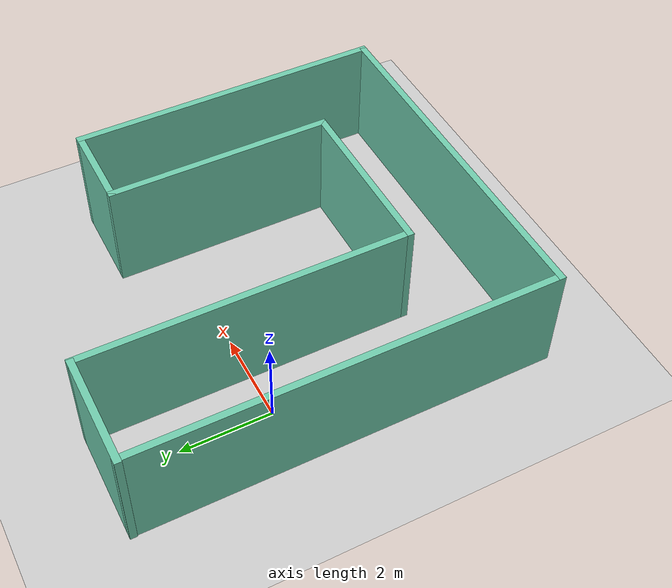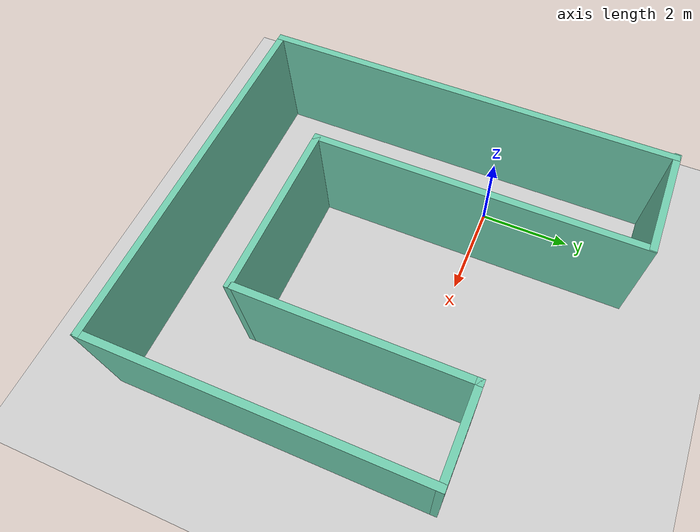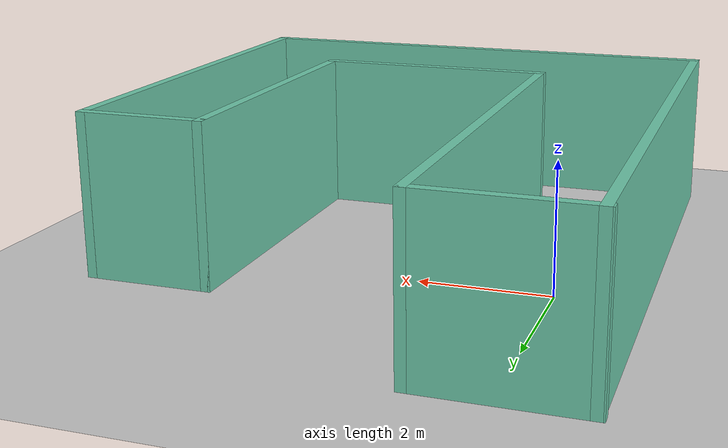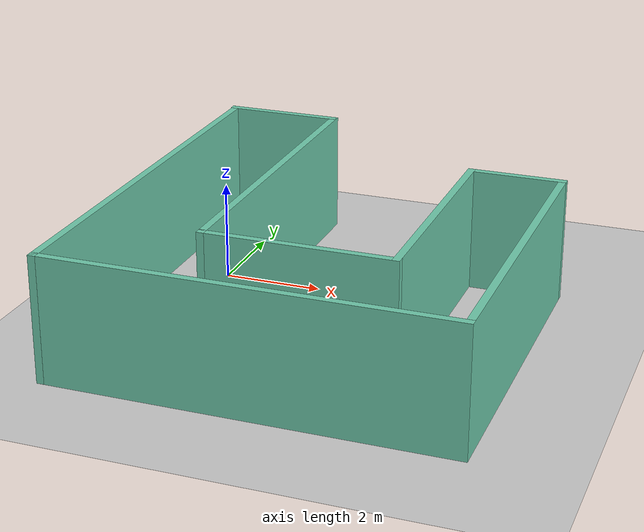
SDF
<sdf version="1.6">
 <world name="default">
  <light name="sun" type="directional">
   <pose>0 0 10 0 -0 0</pose>
   <diffuse>0.8 0.8 0.8 1</diffuse>
   <specular>0.2 0.2 0.2 1</specular>
   <attenuation>
    <range>1000</range>
    <constant>0.9</constant>
    <linear>0.01</linear>
    <quadratic>0.001</quadratic>
   </attenuation>
   <direction>-0.5 0.1 -0.9</direction>
  </light>
  <model name="ground_plane">
   <static>1</static>
   <link name="link">
    <collision name="collision">
     <geometry><plane><normal>0 0 1</normal><size>100 100</size></plane></geometry>
     <surface><friction><ode><mu>100</mu><mu2>50</mu2></ode></friction></surface>
    </collision>
    <visual name="visual">
     <cast_shadows>0</cast_shadows>
     <geometry><plane><normal>0 0 1</normal><size>100 100</size></plane></geometry>
     <material>
      <script><uri>file://media/materials/scripts/gazebo.material</uri><name>Gazebo/Grey</name></script>
     </material>
    </visual>
   </link>
  </model>
  <gravity>0 0 -9.8</gravity>
  <magnetic_field>6e-06 2.3e-05 -4.2e-05</magnetic_field>
  <atmosphere type="adiabatic"/>
  <physics name="default_physics" default="0" type="ode">
   <max_step_size>0.001</max_step_size>
   <real_time_factor>1</real_time_factor>
   <real_time_update_rate>1000</real_time_update_rate>
  </physics>
  <scene><ambient>0.4 0.4 0.4 1</ambient><background>0.7 0.7 0.7 1</background><shadows>1</shadows></scene>
  <spherical_coordinates>
   <surface_model>EARTH_WGS84</surface_model>
   <latitude_deg>0</latitude_deg>
   <longitude_deg>0</longitude_deg>
   <elevation>0</elevation>
   <heading_deg>0</heading_deg>
  </spherical_coordinates>
  <model name="Untitled">
   <pose>2.67663 -1.065 0 0 -0 0</pose>
   <link name="Wall_0">
    <collision name="Wall_0_Collision">
     <geometry><box><size>2.45374 0.15 2.5</size></box></geometry>
     <pose>0 0 1.25 0 -0 0</pose>
    </collision>
    <visual name="Wall_0_Visual">
     <pose>0 0 1.25 0 -0 0</pose>
     <geometry><box><size>2.45374 0.15 2.5</size></box></geometry>
     <material>
      <script><uri>file://media/materials/scripts/gazebo.material</uri><name>Gazebo/Grey</name></script>
      <ambient>0.435294 0.796078 0.67451 1</ambient>
     </material>
     <meta><layer>0</layer></meta>
    </visual>
    <pose>-2.7847 4.51213 0 0 -0 0</pose>
   </link>
   <link name="Wall_3">
    <collision name="Wall_3_Collision">
     <geometry><box><size>9.1744 0.15 2.5</size></box></geometry>
     <pose>0 0 1.25 0 -0 0</pose>
    </collision>
    <visual name="Wall_3_Visual">
     <pose>0 0 1.25 0 -0 0</pose>
     <geometry><box><size>9.1744 0.15 2.5</size></box></geometry>
     <material>
      <script><uri>file://media/materials/scripts/gazebo.material</uri><name>Gazebo/Grey</name></script>
      <ambient>0.435294 0.796078 0.67451 1</ambient>
     </material>
     <meta><layer>0</layer></meta>
    </visual>
    <pose>-3.91344 -9e-06 0 0 0 -1.5708</pose>
   </link>
   <link name="Wall_4">
    <collision name="Wall_4_Collision">
     <geometry><box><size>8 0.15 2.5</size></box></geometry>
     <pose>0 0 1.25 0 -0 0</pose>
    </collision>
    <visual name="Wall_4_Visual">
     <pose>0 0 1.25 0 -0 0</pose>
     <geometry><box><size>8 0.15 2.5</size></box></geometry>
     <material>
      <script><uri>file://media/materials/scripts/gazebo.material</uri><name>Gazebo/Grey</name></script>
      <ambient>0.435294 0.796078 0.67451 1</ambient>
     </material>
     <meta><layer>0</layer></meta>
    </visual>
    <pose>0.011565 -4.51215 0 0 -0 0</pose>
   </link>
   <link name="Wall_5">
    <collision name="Wall_5_Collision">
     <geometry><box><size>7 0.15 2.5</size></box></geometry>
     <pose>0 0 1.25 0 -0 0</pose>
    </collision>
    <visual name="Wall_5_Visual">
     <pose>0 0 1.25 0 -0 0</pose>
     <geometry><box><size>7 0.15 2.5</size></box></geometry>
     <material>
      <script><uri>file://media/materials/scripts/gazebo.material</uri><name>Gazebo/Grey</name></script>
      <ambient>0.435294 0.796078 0.67451 1</ambient>
     </material>
     <meta><layer>0</layer></meta>
    </visual>
    <pose>3.93656 -1.08715 0 0 -0 1.5708</pose>
   </link>
   <link name="Wall_6">
    <collision name="Wall_6_Collision">
     <geometry><box><size>2 0.15 2.5</size></box></geometry>
     <pose>0 0 1.25 0 -0 0</pose>
    </collision>
    <visual name="Wall_6_Visual">
     <pose>0 0 1.25 0 -0 0</pose>
     <geometry><box><size>2 0.15 2.5</size></box></geometry>
     <material>
      <script><uri>file://media/materials/scripts/gazebo.material</uri><name>Gazebo/Grey</name></script>
      <ambient>0.435294 0.796078 0.67451 1</ambient>
     </material>
     <meta><layer>0</layer></meta>
    </visual>
    <pose>3.01157 2.33785 0 0 -0 3.14159</pose>
   </link>
   <link name="Wall_7">
    <collision name="Wall_7_Collision">
     <geometry><box><size>5 0.15 2.5</size></box></geometry>
     <pose>0 0 1.25 0 -0 0</pose>
    </collision>
    <visual name="Wall_7_Visual">
     <pose>0 0 1.25 0 -0 0</pose>
     <geometry><box><size>5 0.15 2.5</size></box></geometry>
     <material>
      <script><uri>file://media/materials/scripts/gazebo.material</uri><name>Gazebo/Grey</name></script>
      <ambient>0.435294 0.796078 0.67451 1</ambient>
     </material>
     <meta><layer>0</layer></meta>
    </visual>
    <pose>2.08656 -0.087147 0 0 0 -1.5708</pose>
   </link>
   <link name="Wall_8">
    <collision name="Wall_8_Collision">
     <geometry><box><size>3.84626 0.15 2.5</size></box></geometry>
     <pose>0 0 1.25 0 -0 0</pose>
    </collision>
    <visual name="Wall_8_Visual">
     <pose>0 0 1.25 0 -0 0</pose>
     <geometry><box><size>3.84626 0.15 2.5</size></box></geometry>
     <material>
      <script><uri>file://media/materials/scripts/gazebo.material</uri><name>Gazebo/Grey</name></script>
      <ambient>0.435294 0.796078 0.67451 1</ambient>
     </material>
     <meta><layer>0</layer></meta>
    </visual>
    <pose>0.238435 -2.51215 0 0 -0 3.14159</pose>
   </link>
   <link name="Wall_9">
    <collision name="Wall_9_Collision">
     <geometry><box><size>7.17443 0.15 2.5</size></box></geometry>
     <pose>0 0 1.25 0 -0 0</pose>
    </collision>
    <visual name="Wall_9_Visual">
     <pose>0 0 1.25 0 -0 0</pose>
     <geometry><box><size>7.17443 0.15 2.5</size></box></geometry>
     <material>
      <script><uri>file://media/materials/scripts/gazebo.material</uri><name>Gazebo/Grey</name></script>
      <ambient>0.435294 0.796078 0.67451 1</ambient>
     </material>
     <meta><layer>0</layer></meta>
    </visual>
    <pose>-1.6097 0.999991 0 0 -0 1.5708</pose>
   </link>
   <static>1</static>
  </model>
 </world>
</sdf>
